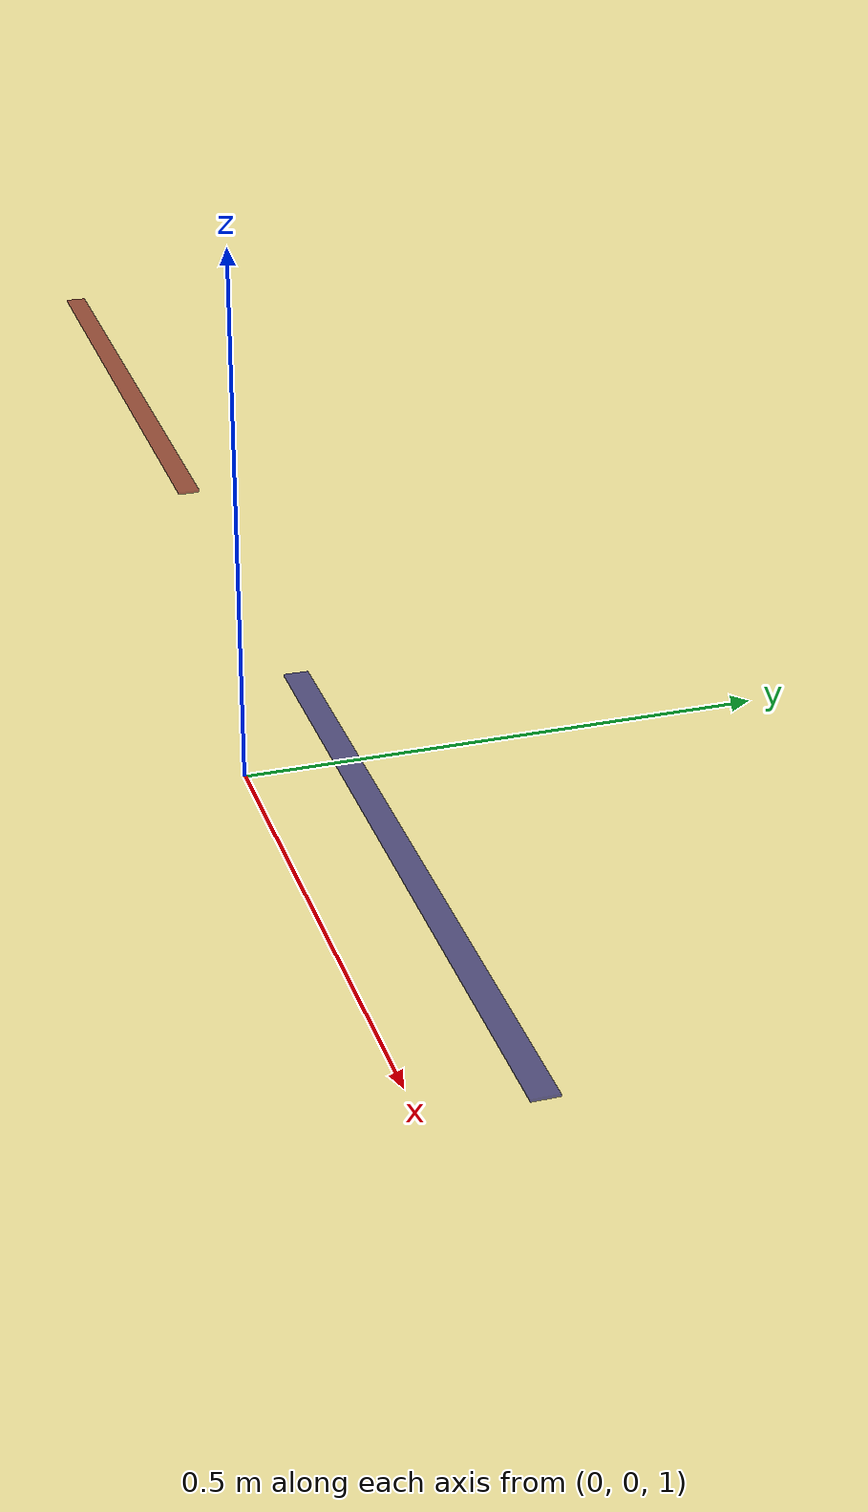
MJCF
<?xml version='1.0' encoding='UTF-8'?>
<mujoco model="unimal_sumo_env">
  <compiler angle="radian"/>
  <option gravity="0 0 -9.81"/>
  <!-- Materials and textures -->
  <asset>
    <!-- outside floor grid -->
    <texture name="env_grid_tex" type="2d" builtin="checker" rgb1="0.45 0.45 0.45" rgb2="0.65 0.65 0.65" width="1024" height="1024" mark="edge" markrgb="0.25 0.25 0.25"/>
    <material name="env_grid" texture="env_grid_tex" texrepeat="2 2" texuniform="true" reflectance="0.1"/>
    <!-- ring (dohyo) material - pastel yellow -->
    <material name="ring_mat" rgba="0.98 0.93 0.64 1.0" reflectance="0.0"/>
    <!-- optional subtle border top tint - pastel, slightly darker -->
    <material name="ring_border_mat" rgba="0.92 0.87 0.58 1.0" reflectance="0.04"/>
  </asset>
  <!-- Lighting / visuals -->
  <visual>
    <headlight ambient="0.05 0.05 0.05" diffuse="0.20 0.20 0.20" specular="0.0 0.0 0.0"/>
    <quality shadowsize="0"/>
  </visual>
  <worldbody>
    <!-- Gentle directional light (shadows) -->
    <!-- Four directional lights from the sides looking at the center of the ring -->
    <light diffuse="0.5 0.5 0.5" specular="0.0 0.0 0.0" directional="true" pos="8 0 4" dir="-1 0 -0.5"/>
    <light diffuse="0.5 0.5 0.5" specular="0.0 0.0 0.0" directional="true" pos="-8 0 4" dir="1 0 -0.5"/>
    <light diffuse="0.5 0.5 0.5" specular="0.0 0.0 0.0" directional="true" pos="0 8 4" dir="0 -1 -0.5"/>
    <light diffuse="0.5 0.5 0.5" specular="0.0 0.0 0.0" directional="true" pos="0 -8 4" dir="0 1 -0.5"/>

    <!-- Parameters for ring geometry -->
    <body name="arena" pos="0 0 0">
      <!-- Surrounding infinite plane: low friction to penalize stepping off ring -->
      <geom name="outside_floor" type="plane" pos="0 0 0" size="50 50 1" material="env_grid" friction="0.005 0.0001 0.0001" solref="0.01 1.5" solimp="0.9 0.95 0.01"/>
      <!-- Sumo ring platform: a flat cylinder (disc) -->
      <geom name="sumo_ring" type="cylinder" size="3.0 0.6" pos="0 0 0.6" material="ring_mat" friction="1.00 0.005 0.0001" condim="3" priority="1" solref="0.005 1" solimp="0.95 0.99 0.005" margin="0.002"/>
      <!-- Spawn sites (for placement) roughly at 60% of radius -->
      <site name="spawn/red" pos="-0.5 0 1.27" size="0.001" rgba="0 0 0 0" type="sphere"/>
      <site name="spawn/blue" pos=" 0.5 0 1.27" size="0.001" rgba="0 0 0 0" type="sphere"/>
      <!-- Starting marks (shikirisen) as non-colliding visual sites -->
      <site name="mark/red_line" type="box" pos="-0.5 0 1.201" size="0.30 0.010 0.001" rgba="0.5 0.1 0.1 0.7"/>
      <site name="mark/blue_line" type="box" pos=" 0.5 0 1.201" size="0.30 0.010 0.001" rgba="0.1 0.1 0.5 0.7"/>
      <!-- Top-down camera for evaluation -->
      <camera name="topdown" pos="0 0 9" quat="1 0 0 0" mode="trackcom"/>
      <camera name="side" pos="1.223 -7.656 4.463" xyaxes="0.987 0.158 0.000 -0.079 0.493 0.867"/>

    </body>
  </worldbody>
</mujoco>
